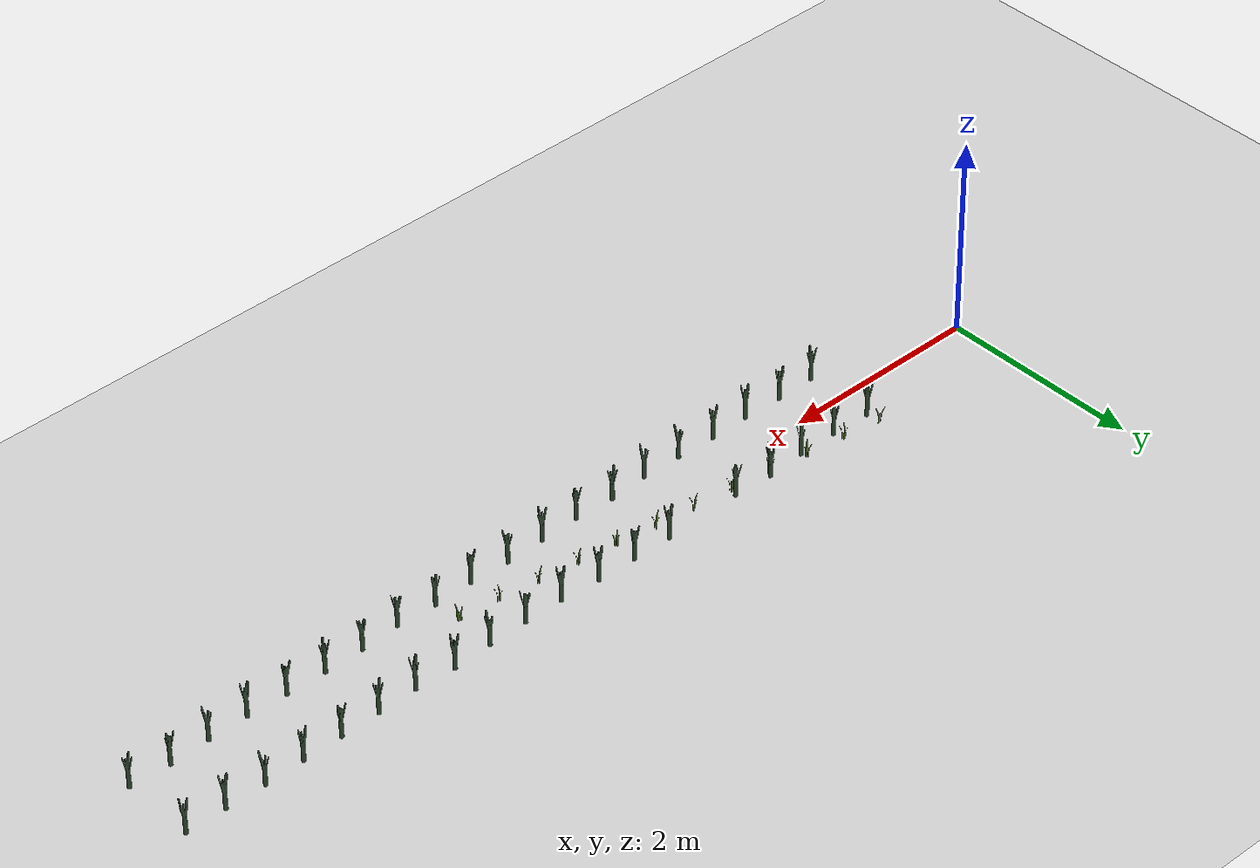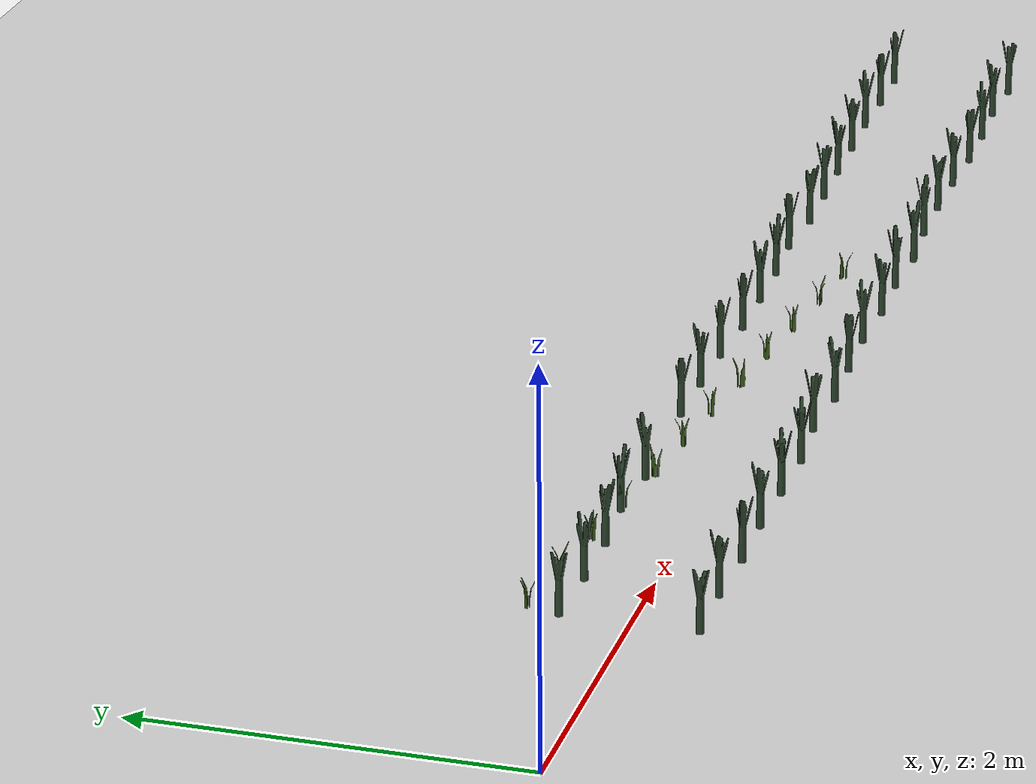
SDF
<sdf version="1.6">
 <world name="default">
  <light name="sun" type="directional">
   <pose>0 0 10 0 -0 0</pose>
   <diffuse>0.5 0.5 0.5 1</diffuse>
   <specular>0.1 0.1 0.1 1</specular>
   <attenuation>
    <range>1000</range>
    <constant>0.9</constant>
    <linear>0.01</linear>
    <quadratic>0.001</quadratic>
   </attenuation>
   <direction>0.9 0.5 -1</direction>
  </light>
  <scene><background>130 200 255 1</background><ambient>130 140 140 1</ambient></scene>
  <include><uri>model://dirt_plane</uri></include>
  <include><uri>model://Leek</uri><pose>1.500000 0.344004 0.15 0 0 -53.961791</pose><static>0</static></include>
  <include>
   <uri>model://Leek</uri>
   <pose>1.900000 0.331758 0.15 0 0 -164.181978</pose>
   <static>0</static>
  </include>
  <include>
   <uri>model://Leek</uri>
   <pose>2.300000 0.335070 0.15 0 0 -134.365991</pose>
   <static>0</static>
  </include>
  <include><uri>model://Leek</uri><pose>2.700000 0.365161 0.15 0 0 136.451701</pose><static>0</static></include>
  <include><uri>model://Leek</uri><pose>3.100000 0.345194 0.15 0 0 -43.249927</pose><static>0</static></include>
  <include><uri>model://Leek</uri><pose>3.900000 0.367136 0.15 0 0 154.225887</pose><static>0</static></include>
  <include><uri>model://Leek</uri><pose>4.300000 0.364109 0.15 0 0 126.979990</pose><static>0</static></include>
  <include><uri>model://Leek</uri><pose>4.700000 0.357347 0.15 0 0 66.124979</pose><static>0</static></include>
  <include>
   <uri>model://Leek</uri>
   <pose>5.100000 0.332917 0.15 0 0 -153.745812</pose>
   <static>0</static>
  </include>
  <include>
   <uri>model://Leek</uri>
   <pose>5.500000 0.333880 0.15 0 0 -145.079975</pose>
   <static>0</static>
  </include>
  <include><uri>model://Leek</uri><pose>5.900000 0.339348 0.15 0 0 -95.868299</pose><static>0</static></include>
  <include><uri>model://Leek</uri><pose>6.300000 0.360821 0.15 0 0 97.388233</pose><static>0</static></include>
  <include>
   <uri>model://Leek</uri>
   <pose>6.700000 0.333667 0.15 0 0 -146.995084</pose>
   <static>0</static>
  </include>
  <include><uri>model://Leek</uri><pose>7.100000 0.343246 0.15 0 0 -60.782886</pose><static>0</static></include>
  <include><uri>model://Leek</uri><pose>7.500000 0.351534 0.15 0 0 13.809923</pose><static>0</static></include>
  <include><uri>model://Leek</uri><pose>7.900000 0.357169 0.15 0 0 64.516620</pose><static>0</static></include>
  <include><uri>model://Leek</uri><pose>8.300000 0.365924 0.15 0 0 143.319182</pose><static>0</static></include>
  <include><uri>model://Leek</uri><pose>8.700000 0.360158 0.15 0 0 91.424635</pose><static>0</static></include>
  <include><uri>model://Leek</uri><pose>9.100000 0.360138 0.15 0 0 91.244564</pose><static>0</static></include>
  <include><uri>model://Leek</uri><pose>1.500000 -0.350406 0.15 0 0 -3.652015</pose><static>0</static></include>
  <include><uri>model://Leek</uri><pose>1.900000 -0.343537 0.15 0 0 58.166578</pose><static>0</static></include>
  <include>
   <uri>model://Leek</uri>
   <pose>2.300000 -0.357298 0.15 0 0 -65.680097</pose>
   <static>0</static>
  </include>
  <include><uri>model://Leek</uri><pose>2.700000 -0.349830 0.15 0 0 1.533259</pose><static>0</static></include>
  <include>
   <uri>model://Leek</uri>
   <pose>3.100000 -0.361318 0.15 0 0 -101.862811</pose>
   <static>0</static>
  </include>
  <include>
   <uri>model://Leek</uri>
   <pose>3.500000 -0.369698 0.15 0 0 -177.278758</pose>
   <static>0</static>
  </include>
  <include><uri>model://Leek</uri><pose>3.900000 -0.339303 0.15 0 0 96.271069</pose><static>0</static></include>
  <include>
   <uri>model://Leek</uri>
   <pose>4.300000 -0.362465 0.15 0 0 -112.182461</pose>
   <static>0</static>
  </include>
  <include><uri>model://Leek</uri><pose>4.700000 -0.347571 0.15 0 0 21.859412</pose><static>0</static></include>
  <include>
   <uri>model://Leek</uri>
   <pose>5.100000 -0.334759 0.15 0 0 137.172296</pose>
   <static>0</static>
  </include>
  <include>
   <uri>model://Leek</uri>
   <pose>5.500000 -0.351944 0.15 0 0 -17.492285</pose>
   <static>0</static>
  </include>
  <include><uri>model://Leek</uri><pose>5.900000 -0.340882 0.15 0 0 82.061218</pose><static>0</static></include>
  <include>
   <uri>model://Leek</uri>
   <pose>6.300000 -0.359807 0.15 0 0 -88.266325</pose>
   <static>0</static>
  </include>
  <include>
   <uri>model://Leek</uri>
   <pose>6.700000 -0.332542 0.15 0 0 157.120012</pose>
   <static>0</static>
  </include>
  <include>
   <uri>model://Leek</uri>
   <pose>7.100000 -0.330868 0.15 0 0 172.190754</pose>
   <static>0</static>
  </include>
  <include>
   <uri>model://Leek</uri>
   <pose>7.500000 -0.337269 0.15 0 0 114.578086</pose>
   <static>0</static>
  </include>
  <include>
   <uri>model://Leek</uri>
   <pose>7.900000 -0.354489 0.15 0 0 -40.397821</pose>
   <static>0</static>
  </include>
  <include><uri>model://Leek</uri><pose>8.300000 -0.350826 0.15 0 0 -7.437052</pose><static>0</static></include>
  <include>
   <uri>model://Leek</uri>
   <pose>8.700000 -0.335198 0.15 0 0 133.220625</pose>
   <static>0</static>
  </include>
  <include>
   <uri>model://Leek</uri>
   <pose>9.100000 -0.355356 0.15 0 0 -48.201903</pose>
   <static>0</static>
  </include>
  <include><uri>model://Grass</uri><pose>1.500000 0.50 0.04 0 0 -53.961791</pose><static>1</static></include>
  <include><uri>model://Grass</uri><pose>1.900000 0.45 0.04 0 0 -164.181978</pose><static>1</static></include>
  <include><uri>model://Grass</uri><pose>2.300000 0.40 0.04 0 0 -134.365991</pose><static>1</static></include>
  <include><uri>model://Grass</uri><pose>2.700000 0.35 0.04 0 0 136.451701</pose><static>1</static></include>
  <include><uri>model://Grass</uri><pose>3.100000 0.30 0.04 0 0 -43.249927</pose><static>1</static></include>
  <include><uri>model://Grass</uri><pose>3.500000 0.25 0.04 0 0 -116.206383</pose><static>1</static></include>
  <include><uri>model://Grass</uri><pose>3.900000 0.20 0.04 0 0 154.225887</pose><static>1</static></include>
  <include><uri>model://Grass</uri><pose>4.300000 0.15 0.04 0 0 126.979990</pose><static>1</static></include>
  <include><uri>model://Grass</uri><pose>4.700000 0.10 0.04 0 0 66.124979</pose><static>1</static></include>
  <include><uri>model://Grass</uri><pose>5.10000 0.05 0.04 0 0 66.124979</pose><static>1</static></include>
  <include><uri>model://Grass</uri><pose>5.500000 0.0 0.04 0 0 -145.079975</pose><static>1</static></include>
  <include><uri>model://Grass</uri><pose>5.900000 -0.05 0.04 0 0 -95.868299</pose><static>1</static></include>
 </world>
</sdf>

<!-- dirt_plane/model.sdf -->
<sdf version="1.4">
<model name="dirt_plane">
  <static>true</static>
    <link name="link">
      <collision name="collision">
        <geometry>
          <plane>
            <normal>0 0 1</normal>
            <size>100 100</size>
          </plane>
        </geometry>
        <surface>
          <friction>
            <ode>
              <mu>100</mu>
              <mu2>50</mu2>
            </ode>
          </friction>
        </surface>
      </collision>
      <visual name="visual">
        <cast_shadows>false</cast_shadows>
        <geometry>
          <plane>
            <normal>0 0 1</normal>
            <size>100 100</size>
          </plane>
        </geometry>
        <material>
          <script>
            <uri>model://ground_plane/materials/scripts/my_ground_plane.material</uri>
            <uri>model://ground_plane/materials/textures</uri>
            <name>my_ground_plane/Dirt</name>
          </script>
        </material>
      </visual>
    </link>
  </model>
</sdf>

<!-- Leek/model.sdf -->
<sdf version='1.6'>
  <model name='Leek'>
    <link name='link'>
      <pose frame=''>0 0 0 0 -0 0</pose>
      <inertial>
        <mass>1</mass>
        <inertia>
          <ixx>0.145833</ixx>
          <ixy>0</ixy>
          <ixz>0</ixz>
          <iyy>0.145833</iyy>
          <iyz>0</iyz>
          <izz>0.125</izz>
        </inertia>
        <pose frame=''>0 0 0 0 -0 0</pose>
      </inertial>
      <self_collide>0</self_collide>
      <kinematic>0</kinematic>
      <gravity>1</gravity>
      <visual name='visual'>
        <geometry>
          <mesh>
            <uri>model://Leek/Poireau.dae</uri>
            <scale>1 1 1</scale>
          </mesh>
        </geometry>
        <material>
          <script>
            <name>Gazebo/Grey</name>
            <uri>file://media/materials/scripts/gazebo.material</uri>
          </script>
          <ambient>0.3 0.7 0.4 0</ambient>
          <diffuse>0.2 0.3 0.2 0</diffuse>
          <specular>0 0 0 1</specular>
          <emissive>0 0 0 1</emissive>
          <shader type='vertex'>
            <normal_map>__default__</normal_map>
          </shader>
        </material>
        <pose frame=''>0 0 -0.08 0 -0 0</pose>
        <cast_shadows>1</cast_shadows>
        <transparency>0</transparency>
      </visual>
      <collision name='collision'>
        <laser_retro>0</laser_retro>
        <max_contacts>10</max_contacts>
        <pose frame=''>0 0 0 0 -0 0</pose>
        <geometry>
          <cylinder>
            <radius>0.02</radius>
            <length>0.25</length>
          </cylinder>
        </geometry>
        <surface>
          <friction>
            <ode>
              <mu>1</mu>
              <mu2>1</mu2>
              <fdir1>0 0 0</fdir1>
              <slip1>0</slip1>
              <slip2>0</slip2>
            </ode>
            <torsional>
              <coefficient>1</coefficient>
              <patch_radius>0</patch_radius>
              <surface_radius>0</surface_radius>
              <use_patch_radius>1</use_patch_radius>
              <ode>
                <slip>0</slip>
              </ode>
            </torsional>
          </friction>
          <bounce>
            <restitution_coefficient>0</restitution_coefficient>
            <threshold>1e+06</threshold>
          </bounce>
          <contact>
            <collide_without_contact>0</collide_without_contact>
            <collide_without_contact_bitmask>1</collide_without_contact_bitmask>
            <collide_bitmask>1</collide_bitmask>
            <ode>
              <soft_cfm>0</soft_cfm>
              <soft_erp>0.2</soft_erp>
              <kp>1e+13</kp>
              <kd>1</kd>
              <max_vel>0.01</max_vel>
              <min_depth>0</min_depth>
            </ode>
            <bullet>
              <split_impulse>1</split_impulse>
              <split_impulse_penetration_threshold>-0.01</split_impulse_penetration_threshold>
              <soft_cfm>0</soft_cfm>
              <soft_erp>0.2</soft_erp>
              <kp>1e+13</kp>
              <kd>1</kd>
            </bullet>
          </contact>
        </surface>
      </collision>
    </link>
    <static>0</static>
    <allow_auto_disable>1</allow_auto_disable>
  </model>
</sdf>

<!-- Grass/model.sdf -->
<sdf version='1.6'>
  <model name='Grass'>
    <link name='link'>
      <pose frame=''>0 0 0 0 -0 0</pose>
      <inertial>
        <mass>1</mass>
        <inertia>
          <ixx>0.145833</ixx>
          <ixy>0</ixy>
          <ixz>0</ixz>
          <iyy>0.145833</iyy>
          <iyz>0</iyz>
          <izz>0.125</izz>
        </inertia>
        <pose frame=''>0 0 0 0 -0 0</pose>
      </inertial>
      <self_collide>0</self_collide>
      <kinematic>0</kinematic>
      <gravity>1</gravity>
      <visual name='visual'>
        <geometry>
          <mesh>
            <uri>model://Grass/Herbe.dae</uri>
            <scale>1 1 1</scale>
          </mesh>
        </geometry>
        <material>
          <script>
            <name>Gazebo/Grey</name>
            <uri>file://media/materials/scripts/gazebo.material</uri>
          </script>
          <ambient>0.9 1 0.5 0</ambient>
          <diffuse>0.25 0.4 0.1 0</diffuse>
          <specular>0 0 0 1</specular>
          <emissive>0 0 0 1</emissive>
          <shader type='vertex'>
            <normal_map>__default__</normal_map>
          </shader>
        </material>
        <pose frame=''>0 0 0 0 -0 0</pose>
        <cast_shadows>1</cast_shadows>
        <transparency>0</transparency>
      </visual>
    </link>
    <static>1</static>
    <allow_auto_disable>1</allow_auto_disable>
  </model>
</sdf>
